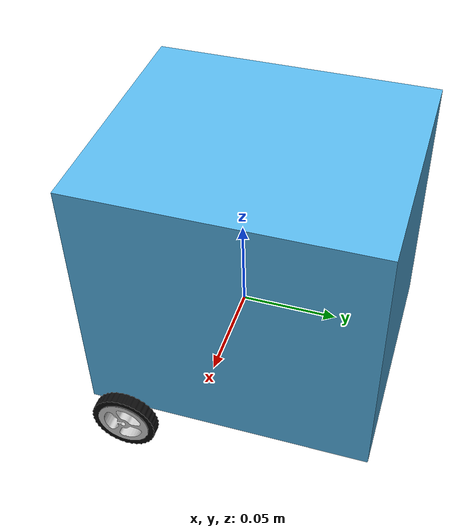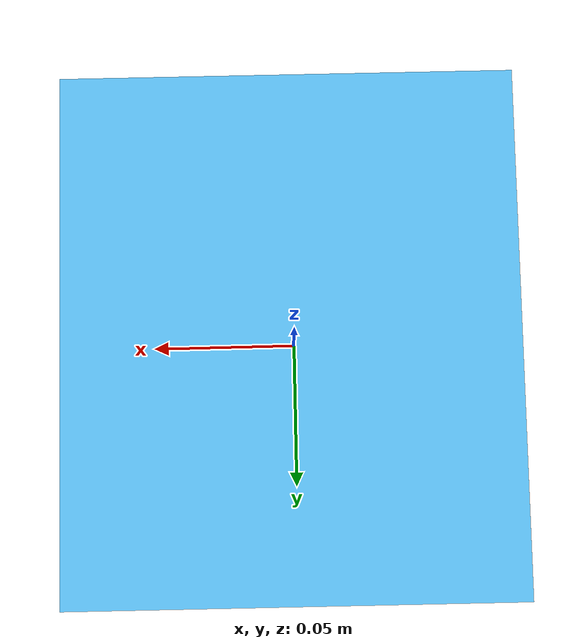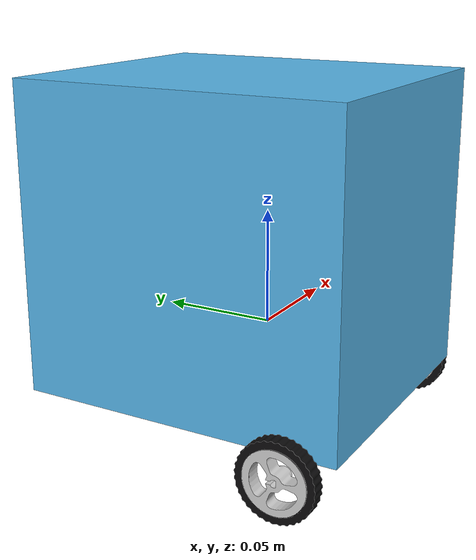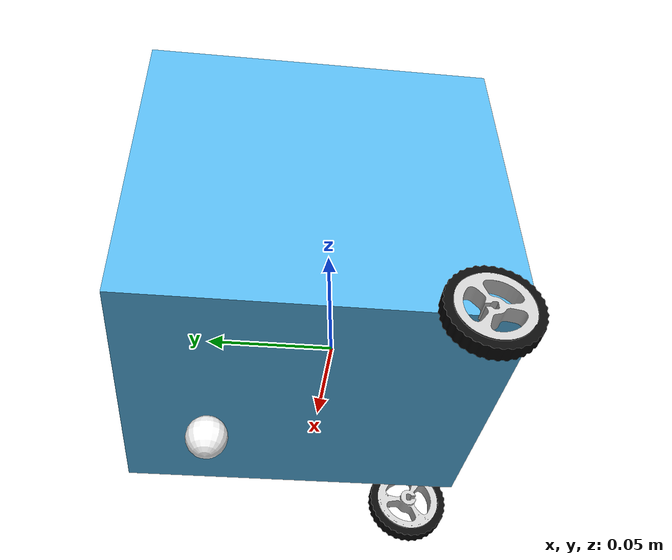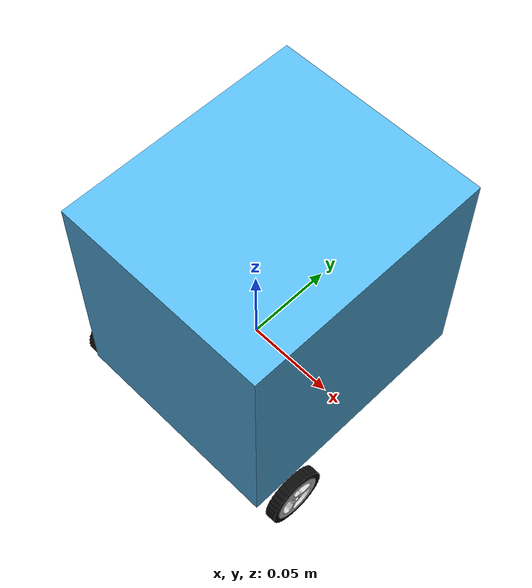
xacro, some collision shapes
<?xml version="1.0"?>
<robot xmlns:xacro="http://www.ros.org/wiki/xacro" name="robozim">
  <material name="White">
    <color rgba="1.0 1.0 1.0 1.0"/>
  </material>
  <!-- DUMMY LINK -->
  <link name="base_link"></link>
  <joint name="base_joint" type="fixed">
    <parent link="base_link"/>
    <child link="base_link_inertial"/>
  </joint>

  <link name="base_link_inertial">
    <inertial>
      <!-- xyz="0.010018459 -0.027907179 0.001156456" -->
      <origin
        xyz="0 0 0"
        rpy="0 0 0" />
      <mass
        value="2.495" />
      <inertia
        ixx="0.005150985"
        ixy="-9.652998E-06"
        ixz="-4.661776E-05"
        iyy="0.004655113"
        iyz="-0.00029209"
        izz="0.005549709" />
    </inertial>
    <visual>
      <origin
        xyz="0.001156456 0.010018459 -0.027907179"
        rpy="0 0 1.57075" />
      <geometry>
        <mesh
          filename="package://robozim/meshes/main_body.dae"/>
      </geometry>
    </visual>
    <collision>
      <origin
        xyz="0.001156456 0.010018459 0.04"
        rpy="0 0 0" />
      <geometry>
        <box size="0.125 0.145 0.135"/>
      </geometry>
    </collision>
  </link>
  <link name="caster_wheel">
    <inertial>
      <origin
        xyz="0 0 0"
        rpy="0 0 0" />
      <mass
        value="0.062021144" />
      <inertia
        ixx="4.424511E-06"
        ixy="0.00"
        ixz="0.00"
        iyy="4.967282E-06"
        iyz="0.00"
        izz="4.424511E-06" />
    </inertial>
    <visual>
      <origin rpy="0 0 0" xyz="0 0 0"/>
      <geometry>
        <sphere radius="0.008"/>
      </geometry>
      <material name="White"/>
    </visual>
    <collision>
      <origin
        xyz="0 0 0"
        rpy="0 0 0" />
      <geometry>
        <sphere radius="0.008"/>
      </geometry>
    </collision>
  </link>
  <joint
    name="caster_wheel_joint"
    type="fixed">
    <origin
      xyz="0.001 0.0473 -0.043"
      rpy="0 0 0" />
    <parent
      link="base_link" />
    <child
      link="caster_wheel" />
    <axis
      xyz="1 0 0" />
  </joint>
  <link name="left_wheel">
    <inertial>
    <!-- xyz="0.023050097 0.065734305 -0.062511629" -->
      <origin
        xyz="0 0 0"
        rpy="0 0 0" />
      <mass
        value="0.03190195" />
      <inertia
        ixx="5.452149E-06"
        ixy="-4.677561E-10"
        ixz="-2.700591E-10"
        iyy="2.842314E-06"
        iyz="5.069885E-10"
        izz="2.841728E-06" />
    </inertial>
    <visual>
      <origin
        xyz="0 0 0"
        rpy="0 0 -1.57075" />
      <geometry>
        <mesh
          filename="package://robozim/meshes/left_wheel.dae" />
      </geometry>
    </visual>
    <collision>
      <origin
        xyz="0 0 0"
        rpy="0 1.57075 0" />
      <geometry>
          <cylinder length="0.008" radius="0.017"/>
      </geometry>
    </collision>
  </link>
  <joint
    name="left_wheel_joint"
    type="continuous">
    <!-- xyz="0.023050097 0.065734305 -0.062511629" -->
    <origin
      xyz="0.07 -0.0425 -0.03276426"
      rpy="0 0 0" />
    <parent
      link="base_link" />
    <child
      link="left_wheel" />
    <axis
      xyz="1 0 0" />
  </joint>

<transmission name="left_wheel_transmission">
  <type>transmission_interface/SimpleTransmission</type>
  <joint name="left_wheel_joint">
    <hardwareInterface>hardware_interface/VelocityJointInterface</hardwareInterface>
  </joint>
  <actuator name="left_wheel_motor">
    <mechanicalReduction>1</mechanicalReduction>
    <hardwareInterface>VelocityJointInterface</hardwareInterface>
  </actuator>
</transmission>

  <link name="right_wheel">
    <inertial>
      <origin
        xyz="0 0 0"
        rpy="0 0 0" />
      <mass
        value="0.03190195" />
      <inertia
        ixx="5.452149E-06"
        ixy="-4.677561E-10"
        ixz="-2.700591E-10"
        iyy="2.842314E-06"
        iyz="5.069885E-10"
        izz="2.841728E-06" />
    </inertial>
    <visual>
      <origin
        xyz="0 0 0"
        rpy="0 0 -1.57075" />
      <geometry>
        <mesh
          filename="package://robozim/meshes/right_wheel.dae"/>
      </geometry>
    </visual>
    <collision>
      <origin
        xyz="0 0 0"
        rpy="0 1.57075 0" />
      <geometry>
          <cylinder length="0.008" radius="0.017"/>
      </geometry>
    </collision>
  </link>
  <joint
    name="right_wheel_joint"
    type="continuous">
    <origin
      xyz="-0.07 -0.0425 -0.03276426"
      rpy="0 0 0" />
    <parent
      link="base_link" />
    <child
      link="right_wheel" />
    <axis
      xyz="1 0 0" />
  </joint>

<transmission name="right_wheel_transmission">
  <type>transmission_interface/SimpleTransmission</type>
  <joint name="right_wheel_joint">
    <hardwareInterface>hardware_interface/VelocityJointInterface</hardwareInterface>
  </joint>
  <actuator name="right_wheel_motor">
   <mechanicalReduction>1</mechanicalReduction>
   <hardwareInterface>VelocityJointInterface</hardwareInterface>
  </actuator>
</transmission>
<!-- Gazebo plugin for ROS Control -->
<gazebo>
  <plugin name="gazebo_ros_control" filename="libgazebo_ros_control.so">
  </plugin>
</gazebo>
</robot>
